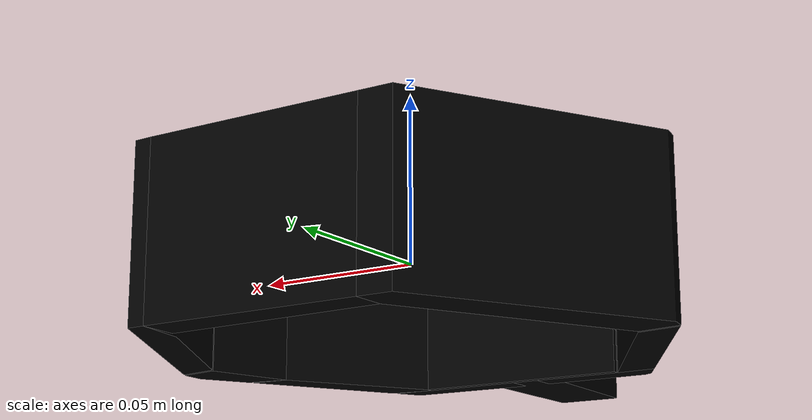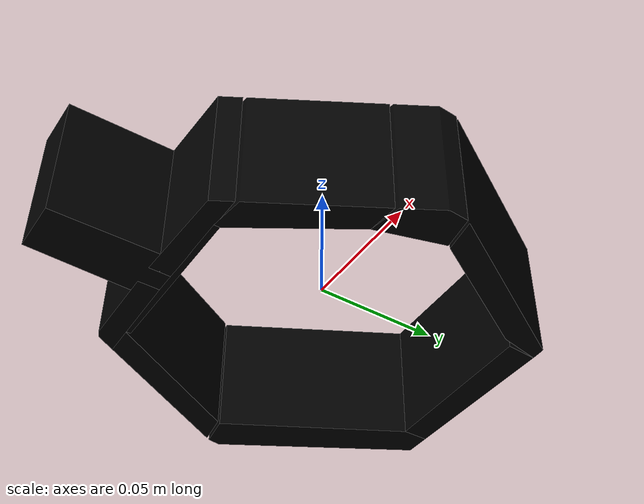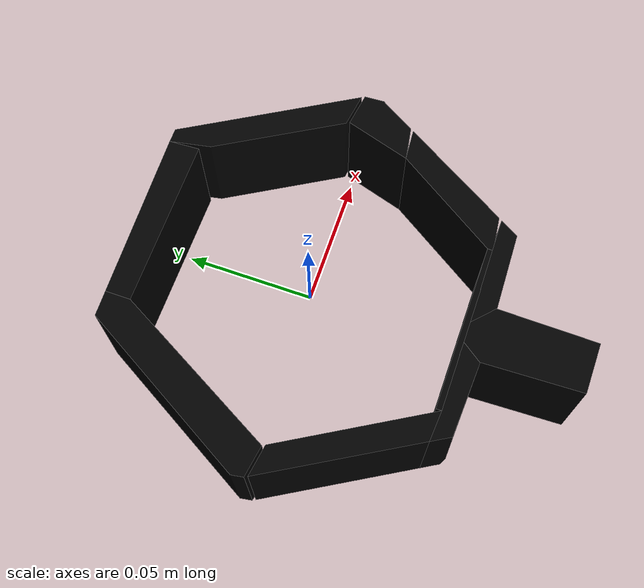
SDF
<?xml version='1.0' encoding='UTF-8'?>
<sdf version="1.7">
  <model name="lollipop">
    <link name="body">
      <inertial>
        <pose>0 0 0 0 0 0</pose>
        <mass>1</mass>
        <inertia>
          <ixx>0.0032709431</ixx>
          <iyy>0.0022183005</iyy>
          <izz>0.0050725769</izz>
          <ixy>5.902141e-19</ixy>
          <ixz>1.3309766e-20</ixz>
          <iyz>9.0349188e-22</iyz>
        </inertia>
      </inertial>
      <visual name="convex_0">
        <pose>0 0 0 0 0 0</pose>
        <geometry>
          <mesh>
            <uri>lollipop_convex_0.obj</uri>
          </mesh>
        </geometry>
        <material>
          <diffuse>0 0 0 1</diffuse>
        </material>
      </visual>
      <collision name="convex_0_volume">
        <pose>0 0 0 0 0 0</pose>
        <geometry>
          <mesh>
            <uri>lollipop_convex_0.obj</uri>
          </mesh>
        </geometry>
        <drake:proximity_properties xmlns:drake="uri:drake">
          <drake:compliant_hydroelastic/>
          <drake:hydroelastic_modulus> 3.0e7 </drake:hydroelastic_modulus>
          <drake:mesh_resolution_hint> 0.18 </drake:mesh_resolution_hint>
          <drake:hunt_crossley_dissipation>10</drake:hunt_crossley_dissipation>
          <drake:mu_dynamic>0.3</drake:mu_dynamic>
        </drake:proximity_properties>
      </collision>
      <visual name="convex_1">
        <pose>0 0 0 0 0 0</pose>
        <geometry>
          <mesh>
            <uri>lollipop_convex_1.obj</uri>
          </mesh>
        </geometry>
        <material>
          <diffuse>0 0 0 1</diffuse>
        </material>
      </visual>
      <collision name="convex_1_volume">
        <pose>0 0 0 0 0 0</pose>
        <geometry>
          <mesh>
            <uri>lollipop_convex_1.obj</uri>
          </mesh>
        </geometry>
        <drake:proximity_properties xmlns:drake="uri:drake">
          <drake:compliant_hydroelastic/>
          <drake:hydroelastic_modulus> 3.0e7 </drake:hydroelastic_modulus>
          <drake:mesh_resolution_hint> 0.18 </drake:mesh_resolution_hint>
          <drake:hunt_crossley_dissipation>10</drake:hunt_crossley_dissipation>
          <drake:mu_dynamic>0.3</drake:mu_dynamic>
        </drake:proximity_properties>
      </collision>
      <visual name="convex_2">
        <pose>0 0 0 0 0 0</pose>
        <geometry>
          <mesh>
            <uri>lollipop_convex_2.obj</uri>
          </mesh>
        </geometry>
        <material>
          <diffuse>0 0 0 1</diffuse>
        </material>
      </visual>
      <collision name="convex_2_volume">
        <pose>0 0 0 0 0 0</pose>
        <geometry>
          <mesh>
            <uri>lollipop_convex_2.obj</uri>
          </mesh>
        </geometry>
        <drake:proximity_properties xmlns:drake="uri:drake">
          <drake:compliant_hydroelastic/>
          <drake:hydroelastic_modulus> 3.0e7 </drake:hydroelastic_modulus>
          <drake:mesh_resolution_hint> 0.18 </drake:mesh_resolution_hint>
          <drake:hunt_crossley_dissipation>10</drake:hunt_crossley_dissipation>
          <drake:mu_dynamic>0.3</drake:mu_dynamic>
        </drake:proximity_properties>
      </collision>
      <visual name="convex_3">
        <pose>0 0 0 0 0 0</pose>
        <geometry>
          <mesh>
            <uri>lollipop_convex_3.obj</uri>
          </mesh>
        </geometry>
        <material>
          <diffuse>0 0 0 1</diffuse>
        </material>
      </visual>
      <collision name="convex_3_volume">
        <pose>0 0 0 0 0 0</pose>
        <geometry>
          <mesh>
            <uri>lollipop_convex_3.obj</uri>
          </mesh>
        </geometry>
        <drake:proximity_properties xmlns:drake="uri:drake">
          <drake:compliant_hydroelastic/>
          <drake:hydroelastic_modulus> 3.0e7 </drake:hydroelastic_modulus>
          <drake:mesh_resolution_hint> 0.18 </drake:mesh_resolution_hint>
          <drake:hunt_crossley_dissipation>10</drake:hunt_crossley_dissipation>
          <drake:mu_dynamic>0.3</drake:mu_dynamic>
        </drake:proximity_properties>
      </collision>
      <visual name="convex_4">
        <pose>0 0 0 0 0 0</pose>
        <geometry>
          <mesh>
            <uri>lollipop_convex_4.obj</uri>
          </mesh>
        </geometry>
        <material>
          <diffuse>0 0 0 1</diffuse>
        </material>
      </visual>
      <collision name="convex_4_volume">
        <pose>0 0 0 0 0 0</pose>
        <geometry>
          <mesh>
            <uri>lollipop_convex_4.obj</uri>
          </mesh>
        </geometry>
        <drake:proximity_properties xmlns:drake="uri:drake">
          <drake:compliant_hydroelastic/>
          <drake:hydroelastic_modulus> 3.0e7 </drake:hydroelastic_modulus>
          <drake:mesh_resolution_hint> 0.18 </drake:mesh_resolution_hint>
          <drake:hunt_crossley_dissipation>10</drake:hunt_crossley_dissipation>
          <drake:mu_dynamic>0.3</drake:mu_dynamic>
        </drake:proximity_properties>
      </collision>
      <visual name="convex_5">
        <pose>0 0 0 0 0 0</pose>
        <geometry>
          <mesh>
            <uri>lollipop_convex_5.obj</uri>
          </mesh>
        </geometry>
        <material>
          <diffuse>0 0 0 1</diffuse>
        </material>
      </visual>
      <collision name="convex_5_volume">
        <pose>0 0 0 0 0 0</pose>
        <geometry>
          <mesh>
            <uri>lollipop_convex_5.obj</uri>
          </mesh>
        </geometry>
        <drake:proximity_properties xmlns:drake="uri:drake">
          <drake:compliant_hydroelastic/>
          <drake:hydroelastic_modulus> 3.0e7 </drake:hydroelastic_modulus>
          <drake:mesh_resolution_hint> 0.18 </drake:mesh_resolution_hint>
          <drake:hunt_crossley_dissipation>10</drake:hunt_crossley_dissipation>
          <drake:mu_dynamic>0.3</drake:mu_dynamic>
        </drake:proximity_properties>
      </collision>
      <visual name="convex_6">
        <pose>0 0 0 0 0 0</pose>
        <geometry>
          <mesh>
            <uri>lollipop_convex_6.obj</uri>
          </mesh>
        </geometry>
        <material>
          <diffuse>0 0 0 1</diffuse>
        </material>
      </visual>
      <collision name="convex_6_volume">
        <pose>0 0 0 0 0 0</pose>
        <geometry>
          <mesh>
            <uri>lollipop_convex_6.obj</uri>
          </mesh>
        </geometry>
        <drake:proximity_properties xmlns:drake="uri:drake">
          <drake:compliant_hydroelastic/>
          <drake:hydroelastic_modulus> 3.0e7 </drake:hydroelastic_modulus>
          <drake:mesh_resolution_hint> 0.18 </drake:mesh_resolution_hint>
          <drake:hunt_crossley_dissipation>10</drake:hunt_crossley_dissipation>
          <drake:mu_dynamic>0.3</drake:mu_dynamic>
        </drake:proximity_properties>
      </collision>
      <visual name="convex_7">
        <pose>0 0 0 0 0 0</pose>
        <geometry>
          <mesh>
            <uri>lollipop_convex_7.obj</uri>
          </mesh>
        </geometry>
        <material>
          <diffuse>0 0 0 1</diffuse>
        </material>
      </visual>
      <collision name="convex_7_volume">
        <pose>0 0 0 0 0 0</pose>
        <geometry>
          <mesh>
            <uri>lollipop_convex_7.obj</uri>
          </mesh>
        </geometry>
        <drake:proximity_properties xmlns:drake="uri:drake">
          <drake:compliant_hydroelastic/>
          <drake:hydroelastic_modulus> 3.0e7 </drake:hydroelastic_modulus>
          <drake:mesh_resolution_hint> 0.18 </drake:mesh_resolution_hint>
          <drake:hunt_crossley_dissipation>10</drake:hunt_crossley_dissipation>
          <drake:mu_dynamic>0.3</drake:mu_dynamic>
        </drake:proximity_properties>
      </collision>
      <visual name="convex_8">
        <pose>0 0 0 0 0 0</pose>
        <geometry>
          <mesh>
            <uri>lollipop_convex_8.obj</uri>
          </mesh>
        </geometry>
        <material>
          <diffuse>0 0 0 1</diffuse>
        </material>
      </visual>
      <collision name="convex_8_volume">
        <pose>0 0 0 0 0 0</pose>
        <geometry>
          <mesh>
            <uri>lollipop_convex_8.obj</uri>
          </mesh>
        </geometry>
        <drake:proximity_properties xmlns:drake="uri:drake">
          <drake:compliant_hydroelastic/>
          <drake:hydroelastic_modulus> 3.0e7 </drake:hydroelastic_modulus>
          <drake:mesh_resolution_hint> 0.18 </drake:mesh_resolution_hint>
          <drake:hunt_crossley_dissipation>10</drake:hunt_crossley_dissipation>
          <drake:mu_dynamic>0.3</drake:mu_dynamic>
        </drake:proximity_properties>
      </collision>
      <visual name="convex_9">
        <pose>0 0 0 0 0 0</pose>
        <geometry>
          <mesh>
            <uri>lollipop_convex_9.obj</uri>
          </mesh>
        </geometry>
        <material>
          <diffuse>0 0 0 1</diffuse>
        </material>
      </visual>
      <collision name="convex_9_volume">
        <pose>0 0 0 0 0 0</pose>
        <geometry>
          <mesh>
            <uri>lollipop_convex_9.obj</uri>
          </mesh>
        </geometry>
        <drake:proximity_properties xmlns:drake="uri:drake">
          <drake:compliant_hydroelastic/>
          <drake:hydroelastic_modulus> 3.0e7 </drake:hydroelastic_modulus>
          <drake:mesh_resolution_hint> 0.18 </drake:mesh_resolution_hint>
          <drake:hunt_crossley_dissipation>10</drake:hunt_crossley_dissipation>
          <drake:mu_dynamic>0.3</drake:mu_dynamic>
        </drake:proximity_properties>
      </collision>
    </link>
  </model>
</sdf>
